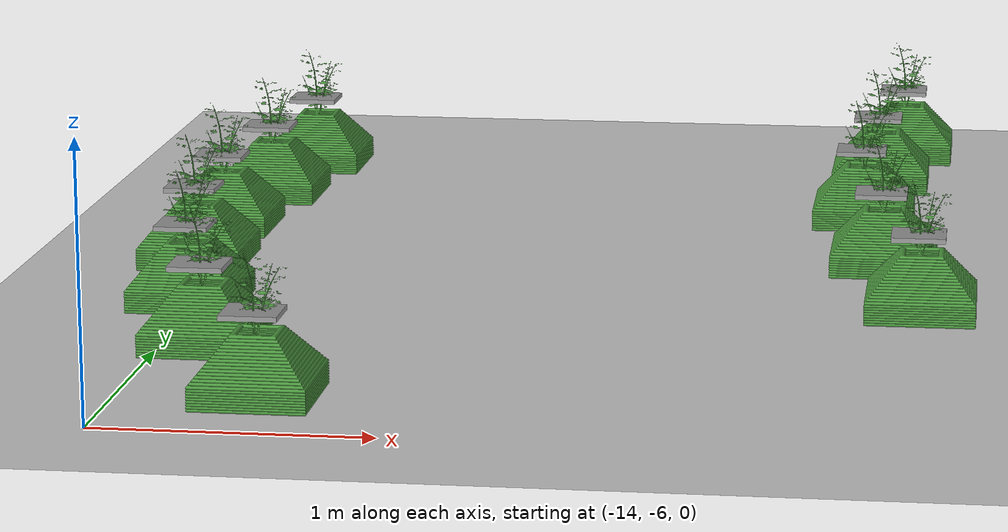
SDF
<sdf version="1.6">
 <world name="default">
  <model name="ground_plane">
   <static>1</static>
   <link name="link">
    <collision name="collision">
     <geometry><plane><normal>0 0 1</normal><size>100 100</size></plane></geometry>
     <surface><friction><ode><mu>100</mu><mu2>50</mu2></ode></friction></surface>
    </collision>
    <visual name="visual">
     <cast_shadows>0</cast_shadows>
     <geometry><plane><normal>0 0 1</normal><size>100 100</size></plane></geometry>
     <material>
      <script><uri>file://media/materials/scripts/gazebo.material</uri><name>Gazebo/Grey</name></script>
     </material>
    </visual>
   </link>
  </model>
  <model name="plant_56">
   <link name="link_0">
    <inertial>
     <mass>1</mass>
     <inertia>
      <ixx>0.0134051</ixx>
      <ixy>0</ixy>
      <ixz>0</ixz>
      <iyy>0.0134051</iyy>
      <iyz>0</iyz>
      <izz>0.0254102</izz>
     </inertia>
    </inertial>
    <gravity>0</gravity>
    <visual name="visual">
     <geometry><mesh><uri>model://square_pot/pot.stl</uri><scale>0.033 0.033 0.02</scale></mesh></geometry>
     <material>
      <lighting>1</lighting>
      <script><uri>file://media/materials/scripts/gazebo.material</uri><name>Gazebo/Grass</name></script>
      <ambient>0.3 0.3 0.3 1</ambient>
      <diffuse>0.7 0.7 0.7 1</diffuse>
      <specular>0.01 0.01 0.01 1</specular>
      <emissive>0 0 0 1</emissive>
      <shader type="vertex"><normal_map>__default__</normal_map></shader>
     </material>
    </visual>
    <collision name="collision">
     <pose>0 0 0.25 0 -0 0</pose>
     <geometry><box><size>0.4 0.4 0.4</size></box></geometry>
     <surface>
      <friction>
       <ode><mu>1</mu><mu2>1</mu2><fdir1>0 0 0</fdir1><slip1>0</slip1><slip2>0</slip2></ode>
       <torsional>
        <coefficient>1</coefficient>
        <patch_radius>0</patch_radius>
        <surface_radius>0</surface_radius>
        <use_patch_radius>1</use_patch_radius>
        <ode><slip>0</slip></ode>
       </torsional>
      </friction>
      <bounce><restitution_coefficient>0</restitution_coefficient><threshold>1e+06</threshold></bounce>
      <contact>
       <collide_without_contact>1</collide_without_contact>
       <collide_without_contact_bitmask>1</collide_without_contact_bitmask>
       <collide_bitmask>1</collide_bitmask>
       <ode>
        <soft_cfm>0</soft_cfm>
        <soft_erp>0.2</soft_erp>
        <kp>1e+13</kp>
        <kd>1</kd>
        <max_vel>0.01</max_vel>
        <min_depth>0</min_depth>
       </ode>
       <bullet>
        <split_impulse>1</split_impulse>
        <split_impulse_penetration_threshold>-0.01</split_impulse_penetration_threshold>
        <soft_cfm>0</soft_cfm>
        <soft_erp>0.2</soft_erp>
        <kp>1e+13</kp>
        <kd>1</kd>
       </bullet>
      </contact>
     </surface>
    </collision>
   </link>
   <link name="link_0_0">
    <pose>-0.011441 -0.008338 0.308474 0 -0 0</pose>
    <inertial>
     <mass>0.000736153</mass>
     <inertia>
      <ixx>2.11165e-06</ixx>
      <ixy>0</ixy>
      <ixz>0</ixz>
      <iyy>2.64382e-06</iyy>
      <iyz>0</iyz>
      <izz>4.70976e-06</izz>
     </inertia>
    </inertial>
    <visual name="visual">
     <geometry><box><size>0.206678 0.18452 0.019291</size></box></geometry>
     <material>
      <lighting>1</lighting>
      <script><uri>file://media/materials/scripts/gazebo.material</uri><name>Gazebo/Grey</name></script>
      <ambient>0.3 0.3 0.3 1</ambient>
      <diffuse>0.7 0.7 0.7 1</diffuse>
      <specular>0.01 0.01 0.01 1</specular>
      <emissive>0 0 0 1</emissive>
     </material>
    </visual>
    <collision name="collision">
     <geometry><box><size>0.206678 0.18452 0.019291</size></box></geometry>
     <surface>
      <friction>
       <ode><mu>1</mu><mu2>1</mu2><fdir1>0 0 0</fdir1><slip1>0</slip1><slip2>0</slip2></ode>
       <torsional>
        <coefficient>1</coefficient>
        <patch_radius>0</patch_radius>
        <surface_radius>0</surface_radius>
        <use_patch_radius>1</use_patch_radius>
        <ode><slip>0</slip></ode>
       </torsional>
      </friction>
      <bounce><restitution_coefficient>0</restitution_coefficient><threshold>1e+06</threshold></bounce>
      <contact>
       <collide_without_contact>0</collide_without_contact>
       <collide_without_contact_bitmask>1</collide_without_contact_bitmask>
       <collide_bitmask>1</collide_bitmask>
       <ode>
        <soft_cfm>0</soft_cfm>
        <soft_erp>0.2</soft_erp>
        <kp>1e+13</kp>
        <kd>1</kd>
        <max_vel>0.01</max_vel>
        <min_depth>0</min_depth>
       </ode>
       <bullet>
        <split_impulse>1</split_impulse>
        <split_impulse_penetration_threshold>-0.01</split_impulse_penetration_threshold>
        <soft_cfm>0</soft_cfm>
        <soft_erp>0.2</soft_erp>
        <kp>1e+13</kp>
        <kd>1</kd>
       </bullet>
      </contact>
     </surface>
    </collision>
   </link>
   <static>1</static>
   <pose>-11.3829 -1.22207 0 0 -0 0</pose>
  </model>
  <model name="plant_57">
   <link name="link_0">
    <inertial>
     <mass>1</mass>
     <inertia>
      <ixx>0.0134051</ixx>
      <ixy>0</ixy>
      <ixz>0</ixz>
      <iyy>0.0134051</iyy>
      <iyz>0</iyz>
      <izz>0.0254102</izz>
     </inertia>
    </inertial>
    <gravity>0</gravity>
    <visual name="visual">
     <geometry><mesh><uri>model://square_pot/pot.stl</uri><scale>0.033 0.033 0.02</scale></mesh></geometry>
     <material>
      <lighting>1</lighting>
      <script><uri>file://media/materials/scripts/gazebo.material</uri><name>Gazebo/Grass</name></script>
      <ambient>0.3 0.3 0.3 1</ambient>
      <diffuse>0.7 0.7 0.7 1</diffuse>
      <specular>0.01 0.01 0.01 1</specular>
      <emissive>0 0 0 1</emissive>
      <shader type="vertex"><normal_map>__default__</normal_map></shader>
     </material>
    </visual>
    <collision name="collision">
     <pose>0 0 0.25 0 -0 0</pose>
     <geometry><box><size>0.4 0.4 0.4</size></box></geometry>
     <surface>
      <friction>
       <ode><mu>1</mu><mu2>1</mu2><fdir1>0 0 0</fdir1><slip1>0</slip1><slip2>0</slip2></ode>
       <torsional>
        <coefficient>1</coefficient>
        <patch_radius>0</patch_radius>
        <surface_radius>0</surface_radius>
        <use_patch_radius>1</use_patch_radius>
        <ode><slip>0</slip></ode>
       </torsional>
      </friction>
      <bounce><restitution_coefficient>0</restitution_coefficient><threshold>1e+06</threshold></bounce>
      <contact>
       <collide_without_contact>1</collide_without_contact>
       <collide_without_contact_bitmask>1</collide_without_contact_bitmask>
       <collide_bitmask>1</collide_bitmask>
       <ode>
        <soft_cfm>0</soft_cfm>
        <soft_erp>0.2</soft_erp>
        <kp>1e+13</kp>
        <kd>1</kd>
        <max_vel>0.01</max_vel>
        <min_depth>0</min_depth>
       </ode>
       <bullet>
        <split_impulse>1</split_impulse>
        <split_impulse_penetration_threshold>-0.01</split_impulse_penetration_threshold>
        <soft_cfm>0</soft_cfm>
        <soft_erp>0.2</soft_erp>
        <kp>1e+13</kp>
        <kd>1</kd>
       </bullet>
      </contact>
     </surface>
    </collision>
   </link>
   <link name="link_0_0">
    <pose>-0.011441 -0.008338 0.308474 0 -0 0</pose>
    <inertial>
     <mass>0.000736153</mass>
     <inertia>
      <ixx>2.11165e-06</ixx>
      <ixy>0</ixy>
      <ixz>0</ixz>
      <iyy>2.64382e-06</iyy>
      <iyz>0</iyz>
      <izz>4.70976e-06</izz>
     </inertia>
    </inertial>
    <visual name="visual">
     <geometry><box><size>0.206678 0.18452 0.019291</size></box></geometry>
     <material>
      <lighting>1</lighting>
      <script><uri>file://media/materials/scripts/gazebo.material</uri><name>Gazebo/Grey</name></script>
      <ambient>0.3 0.3 0.3 1</ambient>
      <diffuse>0.7 0.7 0.7 1</diffuse>
      <specular>0.01 0.01 0.01 1</specular>
      <emissive>0 0 0 1</emissive>
     </material>
    </visual>
    <collision name="collision">
     <geometry><box><size>0.206678 0.18452 0.019291</size></box></geometry>
     <surface>
      <friction>
       <ode><mu>1</mu><mu2>1</mu2><fdir1>0 0 0</fdir1><slip1>0</slip1><slip2>0</slip2></ode>
       <torsional>
        <coefficient>1</coefficient>
        <patch_radius>0</patch_radius>
        <surface_radius>0</surface_radius>
        <use_patch_radius>1</use_patch_radius>
        <ode><slip>0</slip></ode>
       </torsional>
      </friction>
      <bounce><restitution_coefficient>0</restitution_coefficient><threshold>1e+06</threshold></bounce>
      <contact>
       <collide_without_contact>0</collide_without_contact>
       <collide_without_contact_bitmask>1</collide_without_contact_bitmask>
       <collide_bitmask>1</collide_bitmask>
       <ode>
        <soft_cfm>0</soft_cfm>
        <soft_erp>0.2</soft_erp>
        <kp>1e+13</kp>
        <kd>1</kd>
        <max_vel>0.01</max_vel>
        <min_depth>0</min_depth>
       </ode>
       <bullet>
        <split_impulse>1</split_impulse>
        <split_impulse_penetration_threshold>-0.01</split_impulse_penetration_threshold>
        <soft_cfm>0</soft_cfm>
        <soft_erp>0.2</soft_erp>
        <kp>1e+13</kp>
        <kd>1</kd>
       </bullet>
      </contact>
     </surface>
    </collision>
   </link>
   <static>1</static>
   <pose>-11.4752 -1.86133 0 0 -0 0</pose>
  </model>
  <model name="plant_58">
   <link name="link_0">
    <inertial>
     <mass>1</mass>
     <inertia>
      <ixx>0.0134051</ixx>
      <ixy>0</ixy>
      <ixz>0</ixz>
      <iyy>0.0134051</iyy>
      <iyz>0</iyz>
      <izz>0.0254102</izz>
     </inertia>
    </inertial>
    <gravity>0</gravity>
    <visual name="visual">
     <geometry><mesh><uri>model://square_pot/pot.stl</uri><scale>0.033 0.033 0.02</scale></mesh></geometry>
     <material>
      <lighting>1</lighting>
      <script><uri>file://media/materials/scripts/gazebo.material</uri><name>Gazebo/Grass</name></script>
      <ambient>0.3 0.3 0.3 1</ambient>
      <diffuse>0.7 0.7 0.7 1</diffuse>
      <specular>0.01 0.01 0.01 1</specular>
      <emissive>0 0 0 1</emissive>
      <shader type="vertex"><normal_map>__default__</normal_map></shader>
     </material>
    </visual>
    <collision name="collision">
     <pose>0 0 0.25 0 -0 0</pose>
     <geometry><box><size>0.4 0.4 0.4</size></box></geometry>
     <surface>
      <friction>
       <ode><mu>1</mu><mu2>1</mu2><fdir1>0 0 0</fdir1><slip1>0</slip1><slip2>0</slip2></ode>
       <torsional>
        <coefficient>1</coefficient>
        <patch_radius>0</patch_radius>
        <surface_radius>0</surface_radius>
        <use_patch_radius>1</use_patch_radius>
        <ode><slip>0</slip></ode>
       </torsional>
      </friction>
      <bounce><restitution_coefficient>0</restitution_coefficient><threshold>1e+06</threshold></bounce>
      <contact>
       <collide_without_contact>1</collide_without_contact>
       <collide_without_contact_bitmask>1</collide_without_contact_bitmask>
       <collide_bitmask>1</collide_bitmask>
       <ode>
        <soft_cfm>0</soft_cfm>
        <soft_erp>0.2</soft_erp>
        <kp>1e+13</kp>
        <kd>1</kd>
        <max_vel>0.01</max_vel>
        <min_depth>0</min_depth>
       </ode>
       <bullet>
        <split_impulse>1</split_impulse>
        <split_impulse_penetration_threshold>-0.01</split_impulse_penetration_threshold>
        <soft_cfm>0</soft_cfm>
        <soft_erp>0.2</soft_erp>
        <kp>1e+13</kp>
        <kd>1</kd>
       </bullet>
      </contact>
     </surface>
    </collision>
   </link>
   <link name="link_0_0">
    <pose>-0.011441 -0.008338 0.308474 0 -0 0</pose>
    <inertial>
     <mass>0.000736153</mass>
     <inertia>
      <ixx>2.11165e-06</ixx>
      <ixy>0</ixy>
      <ixz>0</ixz>
      <iyy>2.64382e-06</iyy>
      <iyz>0</iyz>
      <izz>4.70976e-06</izz>
     </inertia>
    </inertial>
    <visual name="visual">
     <geometry><box><size>0.206678 0.18452 0.019291</size></box></geometry>
     <material>
      <lighting>1</lighting>
      <script><uri>file://media/materials/scripts/gazebo.material</uri><name>Gazebo/Grey</name></script>
      <ambient>0.3 0.3 0.3 1</ambient>
      <diffuse>0.7 0.7 0.7 1</diffuse>
      <specular>0.01 0.01 0.01 1</specular>
      <emissive>0 0 0 1</emissive>
     </material>
    </visual>
    <collision name="collision">
     <geometry><box><size>0.206678 0.18452 0.019291</size></box></geometry>
     <surface>
      <friction>
       <ode><mu>1</mu><mu2>1</mu2><fdir1>0 0 0</fdir1><slip1>0</slip1><slip2>0</slip2></ode>
       <torsional>
        <coefficient>1</coefficient>
        <patch_radius>0</patch_radius>
        <surface_radius>0</surface_radius>
        <use_patch_radius>1</use_patch_radius>
        <ode><slip>0</slip></ode>
       </torsional>
      </friction>
      <bounce><restitution_coefficient>0</restitution_coefficient><threshold>1e+06</threshold></bounce>
      <contact>
       <collide_without_contact>0</collide_without_contact>
       <collide_without_contact_bitmask>1</collide_without_contact_bitmask>
       <collide_bitmask>1</collide_bitmask>
       <ode>
        <soft_cfm>0</soft_cfm>
        <soft_erp>0.2</soft_erp>
        <kp>1e+13</kp>
        <kd>1</kd>
        <max_vel>0.01</max_vel>
        <min_depth>0</min_depth>
       </ode>
       <bullet>
        <split_impulse>1</split_impulse>
        <split_impulse_penetration_threshold>-0.01</split_impulse_penetration_threshold>
        <soft_cfm>0</soft_cfm>
        <soft_erp>0.2</soft_erp>
        <kp>1e+13</kp>
        <kd>1</kd>
       </bullet>
      </contact>
     </surface>
    </collision>
   </link>
   <static>1</static>
   <pose>-11.5191 -2.58771 0 0 -0 0</pose>
  </model>
  <model name="plant_59">
   <link name="link_0">
    <inertial>
     <mass>1</mass>
     <inertia>
      <ixx>0.0134051</ixx>
      <ixy>0</ixy>
      <ixz>0</ixz>
      <iyy>0.0134051</iyy>
      <iyz>0</iyz>
      <izz>0.0254102</izz>
     </inertia>
    </inertial>
    <gravity>0</gravity>
    <visual name="visual">
     <geometry><mesh><uri>model://square_pot/pot.stl</uri><scale>0.033 0.033 0.02</scale></mesh></geometry>
     <material>
      <lighting>1</lighting>
      <script><uri>file://media/materials/scripts/gazebo.material</uri><name>Gazebo/Grass</name></script>
      <ambient>0.3 0.3 0.3 1</ambient>
      <diffuse>0.7 0.7 0.7 1</diffuse>
      <specular>0.01 0.01 0.01 1</specular>
      <emissive>0 0 0 1</emissive>
      <shader type="vertex"><normal_map>__default__</normal_map></shader>
     </material>
    </visual>
    <collision name="collision">
     <pose>0 0 0.25 0 -0 0</pose>
     <geometry><box><size>0.4 0.4 0.4</size></box></geometry>
     <surface>
      <friction>
       <ode><mu>1</mu><mu2>1</mu2><fdir1>0 0 0</fdir1><slip1>0</slip1><slip2>0</slip2></ode>
       <torsional>
        <coefficient>1</coefficient>
        <patch_radius>0</patch_radius>
        <surface_radius>0</surface_radius>
        <use_patch_radius>1</use_patch_radius>
        <ode><slip>0</slip></ode>
       </torsional>
      </friction>
      <bounce><restitution_coefficient>0</restitution_coefficient><threshold>1e+06</threshold></bounce>
      <contact>
       <collide_without_contact>1</collide_without_contact>
       <collide_without_contact_bitmask>1</collide_without_contact_bitmask>
       <collide_bitmask>1</collide_bitmask>
       <ode>
        <soft_cfm>0</soft_cfm>
        <soft_erp>0.2</soft_erp>
        <kp>1e+13</kp>
        <kd>1</kd>
        <max_vel>0.01</max_vel>
        <min_depth>0</min_depth>
       </ode>
       <bullet>
        <split_impulse>1</split_impulse>
        <split_impulse_penetration_threshold>-0.01</split_impulse_penetration_threshold>
        <soft_cfm>0</soft_cfm>
        <soft_erp>0.2</soft_erp>
        <kp>1e+13</kp>
        <kd>1</kd>
       </bullet>
      </contact>
     </surface>
    </collision>
   </link>
   <link name="link_0_0">
    <pose>-0.011441 -0.008338 0.308474 0 -0 0</pose>
    <inertial>
     <mass>0.000736153</mass>
     <inertia>
      <ixx>2.11165e-06</ixx>
      <ixy>0</ixy>
      <ixz>0</ixz>
      <iyy>2.64382e-06</iyy>
      <iyz>0</iyz>
      <izz>4.70976e-06</izz>
     </inertia>
    </inertial>
    <visual name="visual">
     <geometry><box><size>0.206678 0.18452 0.019291</size></box></geometry>
     <material>
      <lighting>1</lighting>
      <script><uri>file://media/materials/scripts/gazebo.material</uri><name>Gazebo/Grey</name></script>
      <ambient>0.3 0.3 0.3 1</ambient>
      <diffuse>0.7 0.7 0.7 1</diffuse>
      <specular>0.01 0.01 0.01 1</specular>
      <emissive>0 0 0 1</emissive>
     </material>
    </visual>
    <collision name="collision">
     <geometry><box><size>0.206678 0.18452 0.019291</size></box></geometry>
     <surface>
      <friction>
       <ode><mu>1</mu><mu2>1</mu2><fdir1>0 0 0</fdir1><slip1>0</slip1><slip2>0</slip2></ode>
       <torsional>
        <coefficient>1</coefficient>
        <patch_radius>0</patch_radius>
        <surface_radius>0</surface_radius>
        <use_patch_radius>1</use_patch_radius>
        <ode><slip>0</slip></ode>
       </torsional>
      </friction>
      <bounce><restitution_coefficient>0</restitution_coefficient><threshold>1e+06</threshold></bounce>
      <contact>
       <collide_without_contact>0</collide_without_contact>
       <collide_without_contact_bitmask>1</collide_without_contact_bitmask>
       <collide_bitmask>1</collide_bitmask>
       <ode>
        <soft_cfm>0</soft_cfm>
        <soft_erp>0.2</soft_erp>
        <kp>1e+13</kp>
        <kd>1</kd>
        <max_vel>0.01</max_vel>
        <min_depth>0</min_depth>
       </ode>
       <bullet>
        <split_impulse>1</split_impulse>
        <split_impulse_penetration_threshold>-0.01</split_impulse_penetration_threshold>
        <soft_cfm>0</soft_cfm>
        <soft_erp>0.2</soft_erp>
        <kp>1e+13</kp>
        <kd>1</kd>
       </bullet>
      </contact>
     </surface>
    </collision>
   </link>
   <static>1</static>
   <pose>-11.4073 -3.40644 0 0 -0 0</pose>
  </model>
  <model name="plant_60">
   <link name="link_0">
    <inertial>
     <mass>1</mass>
     <inertia>
      <ixx>0.0134051</ixx>
      <ixy>0</ixy>
      <ixz>0</ixz>
      <iyy>0.0134051</iyy>
      <iyz>0</iyz>
      <izz>0.0254102</izz>
     </inertia>
    </inertial>
    <gravity>0</gravity>
    <visual name="visual">
     <geometry><mesh><uri>model://square_pot/pot.stl</uri><scale>0.033 0.033 0.02</scale></mesh></geometry>
     <material>
      <lighting>1</lighting>
      <script><uri>file://media/materials/scripts/gazebo.material</uri><name>Gazebo/Grass</name></script>
      <ambient>0.3 0.3 0.3 1</ambient>
      <diffuse>0.7 0.7 0.7 1</diffuse>
      <specular>0.01 0.01 0.01 1</specular>
      <emissive>0 0 0 1</emissive>
      <shader type="vertex"><normal_map>__default__</normal_map></shader>
     </material>
    </visual>
    <collision name="collision">
     <pose>0 0 0.25 0 -0 0</pose>
     <geometry><box><size>0.4 0.4 0.4</size></box></geometry>
     <surface>
      <friction>
       <ode><mu>1</mu><mu2>1</mu2><fdir1>0 0 0</fdir1><slip1>0</slip1><slip2>0</slip2></ode>
       <torsional>
        <coefficient>1</coefficient>
        <patch_radius>0</patch_radius>
        <surface_radius>0</surface_radius>
        <use_patch_radius>1</use_patch_radius>
        <ode><slip>0</slip></ode>
       </torsional>
      </friction>
      <bounce><restitution_coefficient>0</restitution_coefficient><threshold>1e+06</threshold></bounce>
      <contact>
       <collide_without_contact>1</collide_without_contact>
       <collide_without_contact_bitmask>1</collide_without_contact_bitmask>
       <collide_bitmask>1</collide_bitmask>
       <ode>
        <soft_cfm>0</soft_cfm>
        <soft_erp>0.2</soft_erp>
        <kp>1e+13</kp>
        <kd>1</kd>
        <max_vel>0.01</max_vel>
        <min_depth>0</min_depth>
       </ode>
       <bullet>
        <split_impulse>1</split_impulse>
        <split_impulse_penetration_threshold>-0.01</split_impulse_penetration_threshold>
        <soft_cfm>0</soft_cfm>
        <soft_erp>0.2</soft_erp>
        <kp>1e+13</kp>
        <kd>1</kd>
       </bullet>
      </contact>
     </surface>
    </collision>
   </link>
   <link name="link_0_0">
    <pose>-0.011441 -0.008338 0.308474 0 -0 0</pose>
    <inertial>
     <mass>0.000736153</mass>
     <inertia>
      <ixx>2.11165e-06</ixx>
      <ixy>0</ixy>
      <ixz>0</ixz>
      <iyy>2.64382e-06</iyy>
      <iyz>0</iyz>
      <izz>4.70976e-06</izz>
     </inertia>
    </inertial>
    <visual name="visual">
     <geometry><box><size>0.206678 0.18452 0.019291</size></box></geometry>
     <material>
      <lighting>1</lighting>
      <script><uri>file://media/materials/scripts/gazebo.material</uri><name>Gazebo/Grey</name></script>
      <ambient>0.3 0.3 0.3 1</ambient>
      <diffuse>0.7 0.7 0.7 1</diffuse>
      <specular>0.01 0.01 0.01 1</specular>
      <emissive>0 0 0 1</emissive>
     </material>
    </visual>
    <collision name="collision">
     <geometry><box><size>0.206678 0.18452 0.019291</size></box></geometry>
     <surface>
      <friction>
       <ode><mu>1</mu><mu2>1</mu2><fdir1>0 0 0</fdir1><slip1>0</slip1><slip2>0</slip2></ode>
       <torsional>
        <coefficient>1</coefficient>
        <patch_radius>0</patch_radius>
        <surface_radius>0</surface_radius>
        <use_patch_radius>1</use_patch_radius>
        <ode><slip>0</slip></ode>
       </torsional>
      </friction>
      <bounce><restitution_coefficient>0</restitution_coefficient><threshold>1e+06</threshold></bounce>
      <contact>
       <collide_without_contact>0</collide_without_contact>
       <collide_without_contact_bitmask>1</collide_without_contact_bitmask>
       <collide_bitmask>1</collide_bitmask>
       <ode>
        <soft_cfm>0</soft_cfm>
        <soft_erp>0.2</soft_erp>
        <kp>1e+13</kp>
        <kd>1</kd>
        <max_vel>0.01</max_vel>
        <min_depth>0</min_depth>
       </ode>
       <bullet>
        <split_impulse>1</split_impulse>
        <split_impulse_penetration_threshold>-0.01</split_impulse_penetration_threshold>
        <soft_cfm>0</soft_cfm>
        <soft_erp>0.2</soft_erp>
        <kp>1e+13</kp>
        <kd>1</kd>
       </bullet>
      </contact>
     </surface>
    </collision>
   </link>
   <static>1</static>
   <pose>-11.2412 -4.12909 0 0 -0 0</pose>
  </model>
  <model name="plant_88">
   <link name="link_0">
    <inertial>
     <mass>1</mass>
     <inertia>
      <ixx>0.0134051</ixx>
      <ixy>0</ixy>
      <ixz>0</ixz>
      <iyy>0.0134051</iyy>
      <iyz>0</iyz>
      <izz>0.0254102</izz>
     </inertia>
    </inertial>
    <gravity>0</gravity>
    <visual name="visual">
     <geometry><mesh><uri>model://square_pot/pot.stl</uri><scale>0.033 0.033 0.02</scale></mesh></geometry>
     <material>
      <lighting>1</lighting>
      <script><uri>file://media/materials/scripts/gazebo.material</uri><name>Gazebo/Grass</name></script>
      <ambient>0.3 0.3 0.3 1</ambient>
      <diffuse>0.7 0.7 0.7 1</diffuse>
      <specular>0.01 0.01 0.01 1</specular>
      <emissive>0 0 0 1</emissive>
      <shader type="vertex"><normal_map>__default__</normal_map></shader>
     </material>
    </visual>
    <collision name="collision">
     <pose>0 0 0.25 0 -0 0</pose>
     <geometry><box><size>0.4 0.4 0.4</size></box></geometry>
     <surface>
      <friction>
       <ode><mu>1</mu><mu2>1</mu2><fdir1>0 0 0</fdir1><slip1>0</slip1><slip2>0</slip2></ode>
       <torsional>
        <coefficient>1</coefficient>
        <patch_radius>0</patch_radius>
        <surface_radius>0</surface_radius>
        <use_patch_radius>1</use_patch_radius>
        <ode><slip>0</slip></ode>
       </torsional>
      </friction>
      <bounce><restitution_coefficient>0</restitution_coefficient><threshold>1e+06</threshold></bounce>
      <contact>
       <collide_without_contact>1</collide_without_contact>
       <collide_without_contact_bitmask>1</collide_without_contact_bitmask>
       <collide_bitmask>1</collide_bitmask>
       <ode>
        <soft_cfm>0</soft_cfm>
        <soft_erp>0.2</soft_erp>
        <kp>1e+13</kp>
        <kd>1</kd>
        <max_vel>0.01</max_vel>
        <min_depth>0</min_depth>
       </ode>
       <bullet>
        <split_impulse>1</split_impulse>
        <split_impulse_penetration_threshold>-0.01</split_impulse_penetration_threshold>
        <soft_cfm>0</soft_cfm>
        <soft_erp>0.2</soft_erp>
        <kp>1e+13</kp>
        <kd>1</kd>
       </bullet>
      </contact>
     </surface>
    </collision>
   </link>
   <link name="link_0_0">
    <pose>-0.011441 -0.008338 0.308474 0 -0 0</pose>
    <inertial>
     <mass>0.000736153</mass>
     <inertia>
      <ixx>2.11165e-06</ixx>
      <ixy>0</ixy>
      <ixz>0</ixz>
      <iyy>2.64382e-06</iyy>
      <iyz>0</iyz>
      <izz>4.70976e-06</izz>
     </inertia>
    </inertial>
    <visual name="visual">
     <geometry><box><size>0.206678 0.18452 0.019291</size></box></geometry>
     <material>
      <lighting>1</lighting>
      <script><uri>file://media/materials/scripts/gazebo.material</uri><name>Gazebo/Grey</name></script>
      <ambient>0.3 0.3 0.3 1</ambient>
      <diffuse>0.7 0.7 0.7 1</diffuse>
      <specular>0.01 0.01 0.01 1</specular>
      <emissive>0 0 0 1</emissive>
     </material>
    </visual>
    <collision name="collision">
     <geometry><box><size>0.206678 0.18452 0.019291</size></box></geometry>
     <surface>
      <friction>
       <ode><mu>1</mu><mu2>1</mu2><fdir1>0 0 0</fdir1><slip1>0</slip1><slip2>0</slip2></ode>
       <torsional>
        <coefficient>1</coefficient>
        <patch_radius>0</patch_radius>
        <surface_radius>0</surface_radius>
        <use_patch_radius>1</use_patch_radius>
        <ode><slip>0</slip></ode>
       </torsional>
      </friction>
      <bounce><restitution_coefficient>0</restitution_coefficient><threshold>1e+06</threshold></bounce>
      <contact>
       <collide_without_contact>0</collide_without_contact>
       <collide_without_contact_bitmask>1</collide_without_contact_bitmask>
       <collide_bitmask>1</collide_bitmask>
       <ode>
        <soft_cfm>0</soft_cfm>
        <soft_erp>0.2</soft_erp>
        <kp>1e+13</kp>
        <kd>1</kd>
        <max_vel>0.01</max_vel>
        <min_depth>0</min_depth>
       </ode>
       <bullet>
        <split_impulse>1</split_impulse>
        <split_impulse_penetration_threshold>-0.01</split_impulse_penetration_threshold>
        <soft_cfm>0</soft_cfm>
        <soft_erp>0.2</soft_erp>
        <kp>1e+13</kp>
        <kd>1</kd>
       </bullet>
      </contact>
     </surface>
    </collision>
   </link>
   <static>1</static>
   <pose>-13.4948 -5.56998 0 0 -0 0</pose>
  </model>
  <model name="plant_89">
   <link name="link_0">
    <inertial>
     <mass>1</mass>
     <inertia>
      <ixx>0.0134051</ixx>
      <ixy>0</ixy>
      <ixz>0</ixz>
      <iyy>0.0134051</iyy>
      <iyz>0</iyz>
      <izz>0.0254102</izz>
     </inertia>
    </inertial>
    <gravity>0</gravity>
    <visual name="visual">
     <geometry><mesh><uri>model://square_pot/pot.stl</uri><scale>0.033 0.033 0.02</scale></mesh></geometry>
     <material>
      <lighting>1</lighting>
      <script><uri>file://media/materials/scripts/gazebo.material</uri><name>Gazebo/Grass</name></script>
      <ambient>0.3 0.3 0.3 1</ambient>
      <diffuse>0.7 0.7 0.7 1</diffuse>
      <specular>0.01 0.01 0.01 1</specular>
      <emissive>0 0 0 1</emissive>
      <shader type="vertex"><normal_map>__default__</normal_map></shader>
     </material>
    </visual>
    <collision name="collision">
     <pose>0 0 0.25 0 -0 0</pose>
     <geometry><box><size>0.4 0.4 0.4</size></box></geometry>
     <surface>
      <friction>
       <ode><mu>1</mu><mu2>1</mu2><fdir1>0 0 0</fdir1><slip1>0</slip1><slip2>0</slip2></ode>
       <torsional>
        <coefficient>1</coefficient>
        <patch_radius>0</patch_radius>
        <surface_radius>0</surface_radius>
        <use_patch_radius>1</use_patch_radius>
        <ode><slip>0</slip></ode>
       </torsional>
      </friction>
      <bounce><restitution_coefficient>0</restitution_coefficient><threshold>1e+06</threshold></bounce>
      <contact>
       <collide_without_contact>1</collide_without_contact>
       <collide_without_contact_bitmask>1</collide_without_contact_bitmask>
       <collide_bitmask>1</collide_bitmask>
       <ode>
        <soft_cfm>0</soft_cfm>
        <soft_erp>0.2</soft_erp>
        <kp>1e+13</kp>
        <kd>1</kd>
        <max_vel>0.01</max_vel>
        <min_depth>0</min_depth>
       </ode>
       <bullet>
        <split_impulse>1</split_impulse>
        <split_impulse_penetration_threshold>-0.01</split_impulse_penetration_threshold>
        <soft_cfm>0</soft_cfm>
        <soft_erp>0.2</soft_erp>
        <kp>1e+13</kp>
        <kd>1</kd>
       </bullet>
      </contact>
     </surface>
    </collision>
   </link>
   <link name="link_0_0">
    <pose>-0.011441 -0.008338 0.308474 0 -0 0</pose>
    <inertial>
     <mass>0.000736153</mass>
     <inertia>
      <ixx>2.11165e-06</ixx>
      <ixy>0</ixy>
      <ixz>0</ixz>
      <iyy>2.64382e-06</iyy>
      <iyz>0</iyz>
      <izz>4.70976e-06</izz>
     </inertia>
    </inertial>
    <visual name="visual">
     <geometry><box><size>0.206678 0.18452 0.019291</size></box></geometry>
     <material>
      <lighting>1</lighting>
      <script><uri>file://media/materials/scripts/gazebo.material</uri><name>Gazebo/Grey</name></script>
      <ambient>0.3 0.3 0.3 1</ambient>
      <diffuse>0.7 0.7 0.7 1</diffuse>
      <specular>0.01 0.01 0.01 1</specular>
      <emissive>0 0 0 1</emissive>
     </material>
    </visual>
    <collision name="collision">
     <geometry><box><size>0.206678 0.18452 0.019291</size></box></geometry>
     <surface>
      <friction>
       <ode><mu>1</mu><mu2>1</mu2><fdir1>0 0 0</fdir1><slip1>0</slip1><slip2>0</slip2></ode>
       <torsional>
        <coefficient>1</coefficient>
        <patch_radius>0</patch_radius>
        <surface_radius>0</surface_radius>
        <use_patch_radius>1</use_patch_radius>
        <ode><slip>0</slip></ode>
       </torsional>
      </friction>
      <bounce><restitution_coefficient>0</restitution_coefficient><threshold>1e+06</threshold></bounce>
      <contact>
       <collide_without_contact>0</collide_without_contact>
       <collide_without_contact_bitmask>1</collide_without_contact_bitmask>
       <collide_bitmask>1</collide_bitmask>
       <ode>
        <soft_cfm>0</soft_cfm>
        <soft_erp>0.2</soft_erp>
        <kp>1e+13</kp>
        <kd>1</kd>
        <max_vel>0.01</max_vel>
        <min_depth>0</min_depth>
       </ode>
       <bullet>
        <split_impulse>1</split_impulse>
        <split_impulse_penetration_threshold>-0.01</split_impulse_penetration_threshold>
        <soft_cfm>0</soft_cfm>
        <soft_erp>0.2</soft_erp>
        <kp>1e+13</kp>
        <kd>1</kd>
       </bullet>
      </contact>
     </surface>
    </collision>
   </link>
   <static>1</static>
   <pose>-13.836 -4.90818 0 0 -0 0</pose>
  </model>
  <model name="plant_90">
   <link name="link_0">
    <inertial>
     <mass>1</mass>
     <inertia>
      <ixx>0.0134051</ixx>
      <ixy>0</ixy>
      <ixz>0</ixz>
      <iyy>0.0134051</iyy>
      <iyz>0</iyz>
      <izz>0.0254102</izz>
     </inertia>
    </inertial>
    <gravity>0</gravity>
    <visual name="visual">
     <geometry><mesh><uri>model://square_pot/pot.stl</uri><scale>0.033 0.033 0.02</scale></mesh></geometry>
     <material>
      <lighting>1</lighting>
      <script><uri>file://media/materials/scripts/gazebo.material</uri><name>Gazebo/Grass</name></script>
      <ambient>0.3 0.3 0.3 1</ambient>
      <diffuse>0.7 0.7 0.7 1</diffuse>
      <specular>0.01 0.01 0.01 1</specular>
      <emissive>0 0 0 1</emissive>
      <shader type="vertex"><normal_map>__default__</normal_map></shader>
     </material>
    </visual>
    <collision name="collision">
     <pose>0 0 0.25 0 -0 0</pose>
     <geometry><box><size>0.4 0.4 0.4</size></box></geometry>
     <surface>
      <friction>
       <ode><mu>1</mu><mu2>1</mu2><fdir1>0 0 0</fdir1><slip1>0</slip1><slip2>0</slip2></ode>
       <torsional>
        <coefficient>1</coefficient>
        <patch_radius>0</patch_radius>
        <surface_radius>0</surface_radius>
        <use_patch_radius>1</use_patch_radius>
        <ode><slip>0</slip></ode>
       </torsional>
      </friction>
      <bounce><restitution_coefficient>0</restitution_coefficient><threshold>1e+06</threshold></bounce>
      <contact>
       <collide_without_contact>1</collide_without_contact>
       <collide_without_contact_bitmask>1</collide_without_contact_bitmask>
       <collide_bitmask>1</collide_bitmask>
       <ode>
        <soft_cfm>0</soft_cfm>
        <soft_erp>0.2</soft_erp>
        <kp>1e+13</kp>
        <kd>1</kd>
        <max_vel>0.01</max_vel>
        <min_depth>0</min_depth>
       </ode>
       <bullet>
        <split_impulse>1</split_impulse>
        <split_impulse_penetration_threshold>-0.01</split_impulse_penetration_threshold>
        <soft_cfm>0</soft_cfm>
        <soft_erp>0.2</soft_erp>
        <kp>1e+13</kp>
        <kd>1</kd>
       </bullet>
      </contact>
     </surface>
    </collision>
   </link>
   <link name="link_0_0">
    <pose>-0.011441 -0.008338 0.308474 0 -0 0</pose>
    <inertial>
     <mass>0.000736153</mass>
     <inertia>
      <ixx>2.11165e-06</ixx>
      <ixy>0</ixy>
      <ixz>0</ixz>
      <iyy>2.64382e-06</iyy>
      <iyz>0</iyz>
      <izz>4.70976e-06</izz>
     </inertia>
    </inertial>
    <visual name="visual">
     <geometry><box><size>0.206678 0.18452 0.019291</size></box></geometry>
     <material>
      <lighting>1</lighting>
      <script><uri>file://media/materials/scripts/gazebo.material</uri><name>Gazebo/Grey</name></script>
      <ambient>0.3 0.3 0.3 1</ambient>
      <diffuse>0.7 0.7 0.7 1</diffuse>
      <specular>0.01 0.01 0.01 1</specular>
      <emissive>0 0 0 1</emissive>
     </material>
    </visual>
    <collision name="collision">
     <geometry><box><size>0.206678 0.18452 0.019291</size></box></geometry>
     <surface>
      <friction>
       <ode><mu>1</mu><mu2>1</mu2><fdir1>0 0 0</fdir1><slip1>0</slip1><slip2>0</slip2></ode>
       <torsional>
        <coefficient>1</coefficient>
        <patch_radius>0</patch_radius>
        <surface_radius>0</surface_radius>
        <use_patch_radius>1</use_patch_radius>
        <ode><slip>0</slip></ode>
       </torsional>
      </friction>
      <bounce><restitution_coefficient>0</restitution_coefficient><threshold>1e+06</threshold></bounce>
      <contact>
       <collide_without_contact>0</collide_without_contact>
       <collide_without_contact_bitmask>1</collide_without_contact_bitmask>
       <collide_bitmask>1</collide_bitmask>
       <ode>
        <soft_cfm>0</soft_cfm>
        <soft_erp>0.2</soft_erp>
        <kp>1e+13</kp>
        <kd>1</kd>
        <max_vel>0.01</max_vel>
        <min_depth>0</min_depth>
       </ode>
       <bullet>
        <split_impulse>1</split_impulse>
        <split_impulse_penetration_threshold>-0.01</split_impulse_penetration_threshold>
        <soft_cfm>0</soft_cfm>
        <soft_erp>0.2</soft_erp>
        <kp>1e+13</kp>
        <kd>1</kd>
       </bullet>
      </contact>
     </surface>
    </collision>
   </link>
   <static>1</static>
   <pose>-14.0376 -4.28542 0 0 -0 0</pose>
  </model>
  <model name="plant_91">
   <link name="link_0">
    <inertial>
     <mass>1</mass>
     <inertia>
      <ixx>0.0134051</ixx>
      <ixy>0</ixy>
      <ixz>0</ixz>
      <iyy>0.0134051</iyy>
      <iyz>0</iyz>
      <izz>0.0254102</izz>
     </inertia>
    </inertial>
    <gravity>0</gravity>
    <visual name="visual">
     <geometry><mesh><uri>model://square_pot/pot.stl</uri><scale>0.033 0.033 0.02</scale></mesh></geometry>
     <material>
      <lighting>1</lighting>
      <script><uri>file://media/materials/scripts/gazebo.material</uri><name>Gazebo/Grass</name></script>
      <ambient>0.3 0.3 0.3 1</ambient>
      <diffuse>0.7 0.7 0.7 1</diffuse>
      <specular>0.01 0.01 0.01 1</specular>
      <emissive>0 0 0 1</emissive>
      <shader type="vertex"><normal_map>__default__</normal_map></shader>
     </material>
    </visual>
    <collision name="collision">
     <pose>0 0 0.25 0 -0 0</pose>
     <geometry><box><size>0.4 0.4 0.4</size></box></geometry>
     <surface>
      <friction>
       <ode><mu>1</mu><mu2>1</mu2><fdir1>0 0 0</fdir1><slip1>0</slip1><slip2>0</slip2></ode>
       <torsional>
        <coefficient>1</coefficient>
        <patch_radius>0</patch_radius>
        <surface_radius>0</surface_radius>
        <use_patch_radius>1</use_patch_radius>
        <ode><slip>0</slip></ode>
       </torsional>
      </friction>
      <bounce><restitution_coefficient>0</restitution_coefficient><threshold>1e+06</threshold></bounce>
      <contact>
       <collide_without_contact>1</collide_without_contact>
       <collide_without_contact_bitmask>1</collide_without_contact_bitmask>
       <collide_bitmask>1</collide_bitmask>
       <ode>
        <soft_cfm>0</soft_cfm>
        <soft_erp>0.2</soft_erp>
        <kp>1e+13</kp>
        <kd>1</kd>
        <max_vel>0.01</max_vel>
        <min_depth>0</min_depth>
       </ode>
       <bullet>
        <split_impulse>1</split_impulse>
        <split_impulse_penetration_threshold>-0.01</split_impulse_penetration_threshold>
        <soft_cfm>0</soft_cfm>
        <soft_erp>0.2</soft_erp>
        <kp>1e+13</kp>
        <kd>1</kd>
       </bullet>
      </contact>
     </surface>
    </collision>
   </link>
   <link name="link_0_0">
    <pose>-0.011441 -0.008338 0.308474 0 -0 0</pose>
    <inertial>
     <mass>0.000736153</mass>
     <inertia>
      <ixx>2.11165e-06</ixx>
      <ixy>0</ixy>
      <ixz>0</ixz>
      <iyy>2.64382e-06</iyy>
      <iyz>0</iyz>
      <izz>4.70976e-06</izz>
     </inertia>
    </inertial>
    <visual name="visual">
     <geometry><box><size>0.206678 0.18452 0.019291</size></box></geometry>
     <material>
      <lighting>1</lighting>
      <script><uri>file://media/materials/scripts/gazebo.material</uri><name>Gazebo/Grey</name></script>
      <ambient>0.3 0.3 0.3 1</ambient>
      <diffuse>0.7 0.7 0.7 1</diffuse>
      <specular>0.01 0.01 0.01 1</specular>
      <emissive>0 0 0 1</emissive>
     </material>
    </visual>
    <collision name="collision">
     <geometry><box><size>0.206678 0.18452 0.019291</size></box></geometry>
     <surface>
      <friction>
       <ode><mu>1</mu><mu2>1</mu2><fdir1>0 0 0</fdir1><slip1>0</slip1><slip2>0</slip2></ode>
       <torsional>
        <coefficient>1</coefficient>
        <patch_radius>0</patch_radius>
        <surface_radius>0</surface_radius>
        <use_patch_radius>1</use_patch_radius>
        <ode><slip>0</slip></ode>
       </torsional>
      </friction>
      <bounce><restitution_coefficient>0</restitution_coefficient><threshold>1e+06</threshold></bounce>
      <contact>
       <collide_without_contact>0</collide_without_contact>
       <collide_without_contact_bitmask>1</collide_without_contact_bitmask>
       <collide_bitmask>1</collide_bitmask>
       <ode>
        <soft_cfm>0</soft_cfm>
        <soft_erp>0.2</soft_erp>
        <kp>1e+13</kp>
        <kd>1</kd>
        <max_vel>0.01</max_vel>
        <min_depth>0</min_depth>
       </ode>
       <bullet>
        <split_impulse>1</split_impulse>
        <split_impulse_penetration_threshold>-0.01</split_impulse_penetration_threshold>
        <soft_cfm>0</soft_cfm>
        <soft_erp>0.2</soft_erp>
        <kp>1e+13</kp>
        <kd>1</kd>
       </bullet>
      </contact>
     </surface>
    </collision>
   </link>
   <static>1</static>
   <pose>-14.16 -3.61712 0 0 -0 0</pose>
  </model>
  <model name="plant_92">
   <link name="link_0">
    <inertial>
     <mass>1</mass>
     <inertia>
      <ixx>0.0134051</ixx>
      <ixy>0</ixy>
      <ixz>0</ixz>
      <iyy>0.0134051</iyy>
      <iyz>0</iyz>
      <izz>0.0254102</izz>
     </inertia>
    </inertial>
    <gravity>0</gravity>
    <visual name="visual">
     <geometry><mesh><uri>model://square_pot/pot.stl</uri><scale>0.033 0.033 0.02</scale></mesh></geometry>
     <material>
      <lighting>1</lighting>
      <script><uri>file://media/materials/scripts/gazebo.material</uri><name>Gazebo/Grass</name></script>
      <ambient>0.3 0.3 0.3 1</ambient>
      <diffuse>0.7 0.7 0.7 1</diffuse>
      <specular>0.01 0.01 0.01 1</specular>
      <emissive>0 0 0 1</emissive>
      <shader type="vertex"><normal_map>__default__</normal_map></shader>
     </material>
    </visual>
    <collision name="collision">
     <pose>0 0 0.25 0 -0 0</pose>
     <geometry><box><size>0.4 0.4 0.4</size></box></geometry>
     <surface>
      <friction>
       <ode><mu>1</mu><mu2>1</mu2><fdir1>0 0 0</fdir1><slip1>0</slip1><slip2>0</slip2></ode>
       <torsional>
        <coefficient>1</coefficient>
        <patch_radius>0</patch_radius>
        <surface_radius>0</surface_radius>
        <use_patch_radius>1</use_patch_radius>
        <ode><slip>0</slip></ode>
       </torsional>
      </friction>
      <bounce><restitution_coefficient>0</restitution_coefficient><threshold>1e+06</threshold></bounce>
      <contact>
       <collide_without_contact>1</collide_without_contact>
       <collide_without_contact_bitmask>1</collide_without_contact_bitmask>
       <collide_bitmask>1</collide_bitmask>
       <ode>
        <soft_cfm>0</soft_cfm>
        <soft_erp>0.2</soft_erp>
        <kp>1e+13</kp>
        <kd>1</kd>
        <max_vel>0.01</max_vel>
        <min_depth>0</min_depth>
       </ode>
       <bullet>
        <split_impulse>1</split_impulse>
        <split_impulse_penetration_threshold>-0.01</split_impulse_penetration_threshold>
        <soft_cfm>0</soft_cfm>
        <soft_erp>0.2</soft_erp>
        <kp>1e+13</kp>
        <kd>1</kd>
       </bullet>
      </contact>
     </surface>
    </collision>
   </link>
   <link name="link_0_0">
    <pose>-0.011441 -0.008338 0.308474 0 -0 0</pose>
    <inertial>
     <mass>0.000736153</mass>
     <inertia>
      <ixx>2.11165e-06</ixx>
      <ixy>0</ixy>
      <ixz>0</ixz>
      <iyy>2.64382e-06</iyy>
      <iyz>0</iyz>
      <izz>4.70976e-06</izz>
     </inertia>
    </inertial>
    <visual name="visual">
     <geometry><box><size>0.206678 0.18452 0.019291</size></box></geometry>
     <material>
      <lighting>1</lighting>
      <script><uri>file://media/materials/scripts/gazebo.material</uri><name>Gazebo/Grey</name></script>
      <ambient>0.3 0.3 0.3 1</ambient>
      <diffuse>0.7 0.7 0.7 1</diffuse>
      <specular>0.01 0.01 0.01 1</specular>
      <emissive>0 0 0 1</emissive>
     </material>
    </visual>
    <collision name="collision">
     <geometry><box><size>0.206678 0.18452 0.019291</size></box></geometry>
     <surface>
      <friction>
       <ode><mu>1</mu><mu2>1</mu2><fdir1>0 0 0</fdir1><slip1>0</slip1><slip2>0</slip2></ode>
       <torsional>
        <coefficient>1</coefficient>
        <patch_radius>0</patch_radius>
        <surface_radius>0</surface_radius>
        <use_patch_radius>1</use_patch_radius>
        <ode><slip>0</slip></ode>
       </torsional>
      </friction>
      <bounce><restitution_coefficient>0</restitution_coefficient><threshold>1e+06</threshold></bounce>
      <contact>
       <collide_without_contact>0</collide_without_contact>
       <collide_without_contact_bitmask>1</collide_without_contact_bitmask>
       <collide_bitmask>1</collide_bitmask>
       <ode>
        <soft_cfm>0</soft_cfm>
        <soft_erp>0.2</soft_erp>
        <kp>1e+13</kp>
        <kd>1</kd>
        <max_vel>0.01</max_vel>
        <min_depth>0</min_depth>
       </ode>
       <bullet>
        <split_impulse>1</split_impulse>
        <split_impulse_penetration_threshold>-0.01</split_impulse_penetration_threshold>
        <soft_cfm>0</soft_cfm>
        <soft_erp>0.2</soft_erp>
        <kp>1e+13</kp>
        <kd>1</kd>
       </bullet>
      </contact>
     </surface>
    </collision>
   </link>
   <static>1</static>
   <pose>-14.1847 -3.01083 0 0 -0 0</pose>
  </model>
  <model name="plant_93">
   <link name="link_0">
    <inertial>
     <mass>1</mass>
     <inertia>
      <ixx>0.0134051</ixx>
      <ixy>0</ixy>
      <ixz>0</ixz>
      <iyy>0.0134051</iyy>
      <iyz>0</iyz>
      <izz>0.0254102</izz>
     </inertia>
    </inertial>
    <gravity>0</gravity>
    <visual name="visual">
     <geometry><mesh><uri>model://square_pot/pot.stl</uri><scale>0.033 0.033 0.02</scale></mesh></geometry>
     <material>
      <lighting>1</lighting>
      <script><uri>file://media/materials/scripts/gazebo.material</uri><name>Gazebo/Grass</name></script>
      <ambient>0.3 0.3 0.3 1</ambient>
      <diffuse>0.7 0.7 0.7 1</diffuse>
      <specular>0.01 0.01 0.01 1</specular>
      <emissive>0 0 0 1</emissive>
      <shader type="vertex"><normal_map>__default__</normal_map></shader>
     </material>
    </visual>
    <collision name="collision">
     <pose>0 0 0.25 0 -0 0</pose>
     <geometry><box><size>0.4 0.4 0.4</size></box></geometry>
     <surface>
      <friction>
       <ode><mu>1</mu><mu2>1</mu2><fdir1>0 0 0</fdir1><slip1>0</slip1><slip2>0</slip2></ode>
       <torsional>
        <coefficient>1</coefficient>
        <patch_radius>0</patch_radius>
        <surface_radius>0</surface_radius>
        <use_patch_radius>1</use_patch_radius>
        <ode><slip>0</slip></ode>
       </torsional>
      </friction>
      <bounce><restitution_coefficient>0</restitution_coefficient><threshold>1e+06</threshold></bounce>
      <contact>
       <collide_without_contact>1</collide_without_contact>
       <collide_without_contact_bitmask>1</collide_without_contact_bitmask>
       <collide_bitmask>1</collide_bitmask>
       <ode>
        <soft_cfm>0</soft_cfm>
        <soft_erp>0.2</soft_erp>
        <kp>1e+13</kp>
        <kd>1</kd>
        <max_vel>0.01</max_vel>
        <min_depth>0</min_depth>
       </ode>
       <bullet>
        <split_impulse>1</split_impulse>
        <split_impulse_penetration_threshold>-0.01</split_impulse_penetration_threshold>
        <soft_cfm>0</soft_cfm>
        <soft_erp>0.2</soft_erp>
        <kp>1e+13</kp>
        <kd>1</kd>
       </bullet>
      </contact>
     </surface>
    </collision>
   </link>
   <link name="link_0_0">
    <pose>-0.011441 -0.008338 0.308474 0 -0 0</pose>
    <inertial>
     <mass>0.000736153</mass>
     <inertia>
      <ixx>2.11165e-06</ixx>
      <ixy>0</ixy>
      <ixz>0</ixz>
      <iyy>2.64382e-06</iyy>
      <iyz>0</iyz>
      <izz>4.70976e-06</izz>
     </inertia>
    </inertial>
    <visual name="visual">
     <geometry><box><size>0.206678 0.18452 0.019291</size></box></geometry>
     <material>
      <lighting>1</lighting>
      <script><uri>file://media/materials/scripts/gazebo.material</uri><name>Gazebo/Grey</name></script>
      <ambient>0.3 0.3 0.3 1</ambient>
      <diffuse>0.7 0.7 0.7 1</diffuse>
      <specular>0.01 0.01 0.01 1</specular>
      <emissive>0 0 0 1</emissive>
     </material>
    </visual>
    <collision name="collision">
     <geometry><box><size>0.206678 0.18452 0.019291</size></box></geometry>
     <surface>
      <friction>
       <ode><mu>1</mu><mu2>1</mu2><fdir1>0 0 0</fdir1><slip1>0</slip1><slip2>0</slip2></ode>
       <torsional>
        <coefficient>1</coefficient>
        <patch_radius>0</patch_radius>
        <surface_radius>0</surface_radius>
        <use_patch_radius>1</use_patch_radius>
        <ode><slip>0</slip></ode>
       </torsional>
      </friction>
      <bounce><restitution_coefficient>0</restitution_coefficient><threshold>1e+06</threshold></bounce>
      <contact>
       <collide_without_contact>0</collide_without_contact>
       <collide_without_contact_bitmask>1</collide_without_contact_bitmask>
       <collide_bitmask>1</collide_bitmask>
       <ode>
        <soft_cfm>0</soft_cfm>
        <soft_erp>0.2</soft_erp>
        <kp>1e+13</kp>
        <kd>1</kd>
        <max_vel>0.01</max_vel>
        <min_depth>0</min_depth>
       </ode>
       <bullet>
        <split_impulse>1</split_impulse>
        <split_impulse_penetration_threshold>-0.01</split_impulse_penetration_threshold>
        <soft_cfm>0</soft_cfm>
        <soft_erp>0.2</soft_erp>
        <kp>1e+13</kp>
        <kd>1</kd>
       </bullet>
      </contact>
     </surface>
    </collision>
   </link>
   <static>1</static>
   <pose>-14.11 -2.37702 0 0 -0 0</pose>
  </model>
  <model name="plant_94">
   <link name="link_0">
    <inertial>
     <mass>1</mass>
     <inertia>
      <ixx>0.0134051</ixx>
      <ixy>0</ixy>
      <ixz>0</ixz>
      <iyy>0.0134051</iyy>
      <iyz>0</iyz>
      <izz>0.0254102</izz>
     </inertia>
    </inertial>
    <gravity>0</gravity>
    <visual name="visual">
     <geometry><mesh><uri>model://square_pot/pot.stl</uri><scale>0.033 0.033 0.02</scale></mesh></geometry>
     <material>
      <lighting>1</lighting>
      <script><uri>file://media/materials/scripts/gazebo.material</uri><name>Gazebo/Grass</name></script>
      <ambient>0.3 0.3 0.3 1</ambient>
      <diffuse>0.7 0.7 0.7 1</diffuse>
      <specular>0.01 0.01 0.01 1</specular>
      <emissive>0 0 0 1</emissive>
      <shader type="vertex"><normal_map>__default__</normal_map></shader>
     </material>
    </visual>
    <collision name="collision">
     <pose>0 0 0.25 0 -0 0</pose>
     <geometry><box><size>0.4 0.4 0.4</size></box></geometry>
     <surface>
      <friction>
       <ode><mu>1</mu><mu2>1</mu2><fdir1>0 0 0</fdir1><slip1>0</slip1><slip2>0</slip2></ode>
       <torsional>
        <coefficient>1</coefficient>
        <patch_radius>0</patch_radius>
        <surface_radius>0</surface_radius>
        <use_patch_radius>1</use_patch_radius>
        <ode><slip>0</slip></ode>
       </torsional>
      </friction>
      <bounce><restitution_coefficient>0</restitution_coefficient><threshold>1e+06</threshold></bounce>
      <contact>
       <collide_without_contact>1</collide_without_contact>
       <collide_without_contact_bitmask>1</collide_without_contact_bitmask>
       <collide_bitmask>1</collide_bitmask>
       <ode>
        <soft_cfm>0</soft_cfm>
        <soft_erp>0.2</soft_erp>
        <kp>1e+13</kp>
        <kd>1</kd>
        <max_vel>0.01</max_vel>
        <min_depth>0</min_depth>
       </ode>
       <bullet>
        <split_impulse>1</split_impulse>
        <split_impulse_penetration_threshold>-0.01</split_impulse_penetration_threshold>
        <soft_cfm>0</soft_cfm>
        <soft_erp>0.2</soft_erp>
        <kp>1e+13</kp>
        <kd>1</kd>
       </bullet>
      </contact>
     </surface>
    </collision>
   </link>
   <link name="link_0_0">
    <pose>-0.011441 -0.008338 0.308474 0 -0 0</pose>
    <inertial>
     <mass>0.000736153</mass>
     <inertia>
      <ixx>2.11165e-06</ixx>
      <ixy>0</ixy>
      <ixz>0</ixz>
      <iyy>2.64382e-06</iyy>
      <iyz>0</iyz>
      <izz>4.70976e-06</izz>
     </inertia>
    </inertial>
    <visual name="visual">
     <geometry><box><size>0.206678 0.18452 0.019291</size></box></geometry>
     <material>
      <lighting>1</lighting>
      <script><uri>file://media/materials/scripts/gazebo.material</uri><name>Gazebo/Grey</name></script>
      <ambient>0.3 0.3 0.3 1</ambient>
      <diffuse>0.7 0.7 0.7 1</diffuse>
      <specular>0.01 0.01 0.01 1</specular>
      <emissive>0 0 0 1</emissive>
     </material>
    </visual>
    <collision name="collision">
     <geometry><box><size>0.206678 0.18452 0.019291</size></box></geometry>
     <surface>
      <friction>
       <ode><mu>1</mu><mu2>1</mu2><fdir1>0 0 0</fdir1><slip1>0</slip1><slip2>0</slip2></ode>
       <torsional>
        <coefficient>1</coefficient>
        <patch_radius>0</patch_radius>
        <surface_radius>0</surface_radius>
        <use_patch_radius>1</use_patch_radius>
        <ode><slip>0</slip></ode>
       </torsional>
      </friction>
      <bounce><restitution_coefficient>0</restitution_coefficient><threshold>1e+06</threshold></bounce>
      <contact>
       <collide_without_contact>0</collide_without_contact>
       <collide_without_contact_bitmask>1</collide_without_contact_bitmask>
       <collide_bitmask>1</collide_bitmask>
       <ode>
        <soft_cfm>0</soft_cfm>
        <soft_erp>0.2</soft_erp>
        <kp>1e+13</kp>
        <kd>1</kd>
        <max_vel>0.01</max_vel>
        <min_depth>0</min_depth>
       </ode>
       <bullet>
        <split_impulse>1</split_impulse>
        <split_impulse_penetration_threshold>-0.01</split_impulse_penetration_threshold>
        <soft_cfm>0</soft_cfm>
        <soft_erp>0.2</soft_erp>
        <kp>1e+13</kp>
        <kd>1</kd>
       </bullet>
      </contact>
     </surface>
    </collision>
   </link>
   <static>1</static>
   <pose>-14.0355 -1.72843 0 0 -0 0</pose>
  </model>
 </world>
</sdf>
